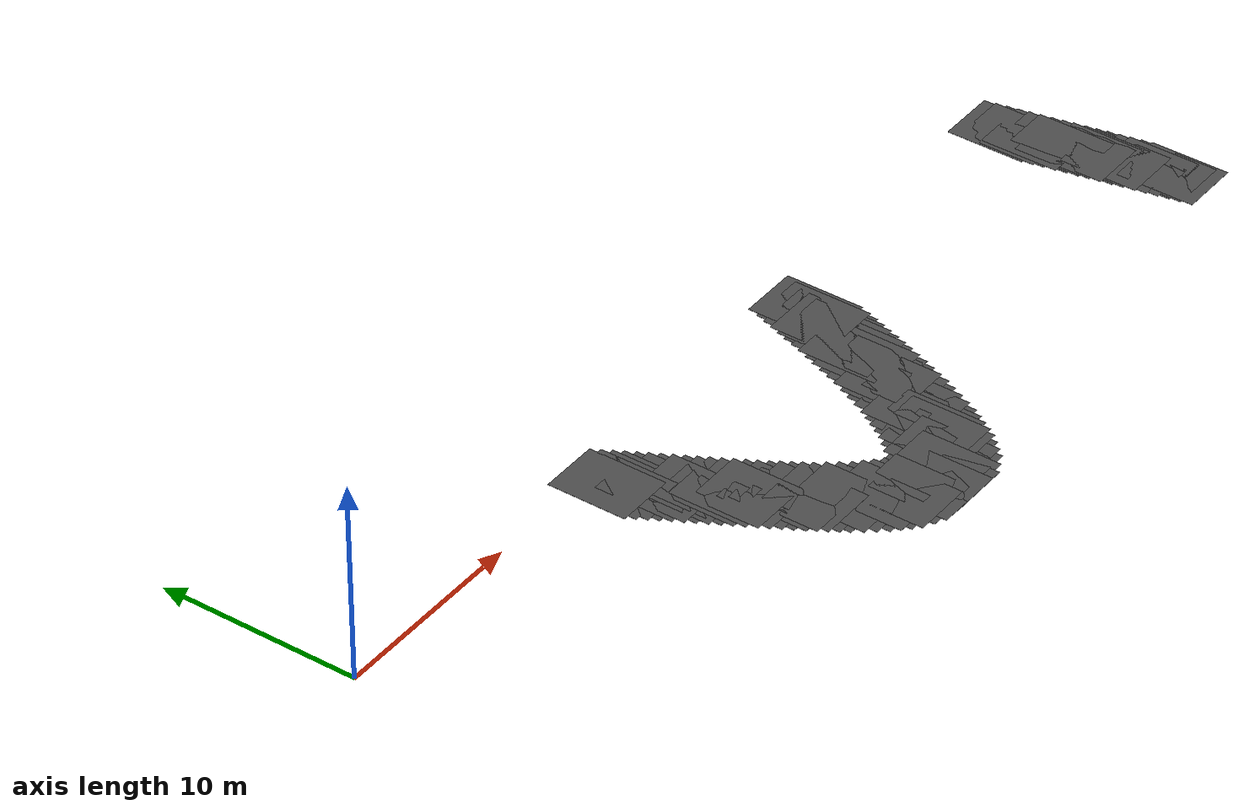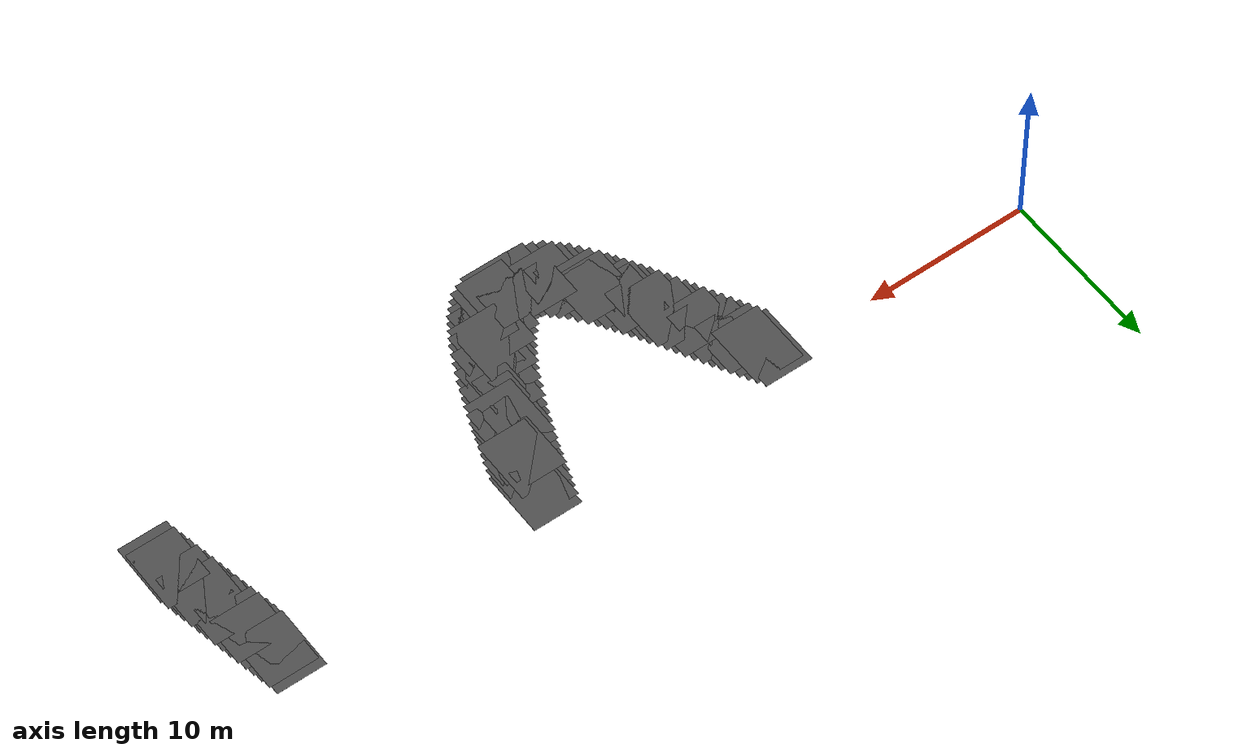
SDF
<sdf version="1.7">
 <world name="default">
  <model name="roadSegment_16_1">
   <static>1</static>
   <link name="link">
    <collision name="collision"><geometry><box><size>3 4 0.01</size></box></geometry></collision>
    <visual name="visual">
     <cast_shadows>0</cast_shadows>
     <geometry><box><size>3 4 0.01</size></box></geometry>
     <material>
      <script>
       <uri>model://asphalt_plane/materials/scripts</uri>
       <uri>model://asphalt_plane/materials/textures</uri>
       <name>vrc/asphalt</name>
      </script>
     </material>
    </visual>
   </link>
   <pose>16.25 -0.89327 0 0 -0 0</pose>
  </model>
  <model name="roadSegment_16_2">
   <static>1</static>
   <link name="link">
    <collision name="collision"><geometry><box><size>3 4 0.01</size></box></geometry></collision>
    <visual name="visual">
     <cast_shadows>0</cast_shadows>
     <geometry><box><size>3 4 0.01</size></box></geometry>
     <material>
      <script>
       <uri>model://asphalt_plane/materials/scripts</uri>
       <uri>model://asphalt_plane/materials/textures</uri>
       <name>vrc/asphalt</name>
      </script>
     </material>
    </visual>
   </link>
   <pose>16.5 -1.31955 0 0 -0 0</pose>
  </model>
  <model name="roadSegment_16_3">
   <static>1</static>
   <link name="link">
    <collision name="collision"><geometry><box><size>3 4 0.01</size></box></geometry></collision>
    <visual name="visual">
     <cast_shadows>0</cast_shadows>
     <geometry><box><size>3 4 0.01</size></box></geometry>
     <material>
      <script>
       <uri>model://asphalt_plane/materials/scripts</uri>
       <uri>model://asphalt_plane/materials/textures</uri>
       <name>vrc/asphalt</name>
      </script>
     </material>
    </visual>
   </link>
   <pose>16.75 -1.74582 0 0 -0 0</pose>
  </model>
  <model name="roadSegment_17_0">
   <static>1</static>
   <link name="link">
    <collision name="collision"><geometry><box><size>3 4 0.01</size></box></geometry></collision>
    <visual name="visual">
     <cast_shadows>0</cast_shadows>
     <geometry><box><size>3 4 0.01</size></box></geometry>
     <material>
      <script>
       <uri>model://asphalt_plane/materials/scripts</uri>
       <uri>model://asphalt_plane/materials/textures</uri>
       <name>vrc/asphalt</name>
      </script>
     </material>
    </visual>
   </link>
   <pose>17 -2.1721 0 0 -0 0</pose>
  </model>
  <model name="roadSegment_17_1">
   <static>1</static>
   <link name="link">
    <collision name="collision"><geometry><box><size>3 4 0.01</size></box></geometry></collision>
    <visual name="visual">
     <cast_shadows>0</cast_shadows>
     <geometry><box><size>3 4 0.01</size></box></geometry>
     <material>
      <script>
       <uri>model://asphalt_plane/materials/scripts</uri>
       <uri>model://asphalt_plane/materials/textures</uri>
       <name>vrc/asphalt</name>
      </script>
     </material>
    </visual>
   </link>
   <pose>17.25 -2.62475 0 0 -0 0</pose>
  </model>
  <model name="roadSegment_17_2">
   <static>1</static>
   <link name="link">
    <collision name="collision"><geometry><box><size>3 4 0.01</size></box></geometry></collision>
    <visual name="visual">
     <cast_shadows>0</cast_shadows>
     <geometry><box><size>3 4 0.01</size></box></geometry>
     <material>
      <script>
       <uri>model://asphalt_plane/materials/scripts</uri>
       <uri>model://asphalt_plane/materials/textures</uri>
       <name>vrc/asphalt</name>
      </script>
     </material>
    </visual>
   </link>
   <pose>17.5 -3.07739 0 0 -0 0</pose>
  </model>
  <model name="roadSegment_17_3">
   <static>1</static>
   <link name="link">
    <collision name="collision"><geometry><box><size>3 4 0.01</size></box></geometry></collision>
    <visual name="visual">
     <cast_shadows>0</cast_shadows>
     <geometry><box><size>3 4 0.01</size></box></geometry>
     <material>
      <script>
       <uri>model://asphalt_plane/materials/scripts</uri>
       <uri>model://asphalt_plane/materials/textures</uri>
       <name>vrc/asphalt</name>
      </script>
     </material>
    </visual>
   </link>
   <pose>17.75 -3.53004 0 0 -0 0</pose>
  </model>
  <model name="roadSegment_18_0">
   <static>1</static>
   <link name="link">
    <collision name="collision"><geometry><box><size>3 4 0.01</size></box></geometry></collision>
    <visual name="visual">
     <cast_shadows>0</cast_shadows>
     <geometry><box><size>3 4 0.01</size></box></geometry>
     <material>
      <script>
       <uri>model://asphalt_plane/materials/scripts</uri>
       <uri>model://asphalt_plane/materials/textures</uri>
       <name>vrc/asphalt</name>
      </script>
     </material>
    </visual>
   </link>
   <pose>18 -3.98268 0 0 -0 0</pose>
  </model>
  <model name="roadSegment_18_1">
   <static>1</static>
   <link name="link">
    <collision name="collision"><geometry><box><size>3 4 0.01</size></box></geometry></collision>
    <visual name="visual">
     <cast_shadows>0</cast_shadows>
     <geometry><box><size>3 4 0.01</size></box></geometry>
     <material>
      <script>
       <uri>model://asphalt_plane/materials/scripts</uri>
       <uri>model://asphalt_plane/materials/textures</uri>
       <name>vrc/asphalt</name>
      </script>
     </material>
    </visual>
   </link>
   <pose>18.25 -4.44018 0 0 -0 0</pose>
  </model>
  <model name="roadSegment_18_2">
   <static>1</static>
   <link name="link">
    <collision name="collision"><geometry><box><size>3 4 0.01</size></box></geometry></collision>
    <visual name="visual">
     <cast_shadows>0</cast_shadows>
     <geometry><box><size>3 4 0.01</size></box></geometry>
     <material>
      <script>
       <uri>model://asphalt_plane/materials/scripts</uri>
       <uri>model://asphalt_plane/materials/textures</uri>
       <name>vrc/asphalt</name>
      </script>
     </material>
    </visual>
   </link>
   <pose>18.5 -4.89767 0 0 -0 0</pose>
  </model>
  <model name="roadSegment_18_3">
   <static>1</static>
   <link name="link">
    <collision name="collision"><geometry><box><size>3 4 0.01</size></box></geometry></collision>
    <visual name="visual">
     <cast_shadows>0</cast_shadows>
     <geometry><box><size>3 4 0.01</size></box></geometry>
     <material>
      <script>
       <uri>model://asphalt_plane/materials/scripts</uri>
       <uri>model://asphalt_plane/materials/textures</uri>
       <name>vrc/asphalt</name>
      </script>
     </material>
    </visual>
   </link>
   <pose>18.75 -5.35516 0 0 -0 0</pose>
  </model>
  <model name="roadSegment_19_0">
   <static>1</static>
   <link name="link">
    <collision name="collision"><geometry><box><size>3 4 0.01</size></box></geometry></collision>
    <visual name="visual">
     <cast_shadows>0</cast_shadows>
     <geometry><box><size>3 4 0.01</size></box></geometry>
     <material>
      <script>
       <uri>model://asphalt_plane/materials/scripts</uri>
       <uri>model://asphalt_plane/materials/textures</uri>
       <name>vrc/asphalt</name>
      </script>
     </material>
    </visual>
   </link>
   <pose>19 -5.81265 0 0 -0 0</pose>
  </model>
  <model name="roadSegment_19_1">
   <static>1</static>
   <link name="link">
    <collision name="collision"><geometry><box><size>3 4 0.01</size></box></geometry></collision>
    <visual name="visual">
     <cast_shadows>0</cast_shadows>
     <geometry><box><size>3 4 0.01</size></box></geometry>
     <material>
      <script>
       <uri>model://asphalt_plane/materials/scripts</uri>
       <uri>model://asphalt_plane/materials/textures</uri>
       <name>vrc/asphalt</name>
      </script>
     </material>
    </visual>
   </link>
   <pose>19.25 -6.25149 0 0 -0 0</pose>
  </model>
  <model name="roadSegment_19_2">
   <static>1</static>
   <link name="link">
    <collision name="collision"><geometry><box><size>3 4 0.01</size></box></geometry></collision>
    <visual name="visual">
     <cast_shadows>0</cast_shadows>
     <geometry><box><size>3 4 0.01</size></box></geometry>
     <material>
      <script>
       <uri>model://asphalt_plane/materials/scripts</uri>
       <uri>model://asphalt_plane/materials/textures</uri>
       <name>vrc/asphalt</name>
      </script>
     </material>
    </visual>
   </link>
   <pose>19.5 -6.69034 0 0 -0 0</pose>
  </model>
  <model name="roadSegment_19_3">
   <static>1</static>
   <link name="link">
    <collision name="collision"><geometry><box><size>3 4 0.01</size></box></geometry></collision>
    <visual name="visual">
     <cast_shadows>0</cast_shadows>
     <geometry><box><size>3 4 0.01</size></box></geometry>
     <material>
      <script>
       <uri>model://asphalt_plane/materials/scripts</uri>
       <uri>model://asphalt_plane/materials/textures</uri>
       <name>vrc/asphalt</name>
      </script>
     </material>
    </visual>
   </link>
   <pose>19.75 -7.12918 0 0 -0 0</pose>
  </model>
  <model name="roadSegment_20_0">
   <static>1</static>
   <link name="link">
    <collision name="collision"><geometry><box><size>3 4 0.01</size></box></geometry></collision>
    <visual name="visual">
     <cast_shadows>0</cast_shadows>
     <geometry><box><size>3 4 0.01</size></box></geometry>
     <material>
      <script>
       <uri>model://asphalt_plane/materials/scripts</uri>
       <uri>model://asphalt_plane/materials/textures</uri>
       <name>vrc/asphalt</name>
      </script>
     </material>
    </visual>
   </link>
   <pose>20 -7.56802 0 0 -0 0</pose>
  </model>
  <model name="roadSegment_20_1">
   <static>1</static>
   <link name="link">
    <collision name="collision"><geometry><box><size>3 4 0.01</size></box></geometry></collision>
    <visual name="visual">
     <cast_shadows>0</cast_shadows>
     <geometry><box><size>3 4 0.01</size></box></geometry>
     <material>
      <script>
       <uri>model://asphalt_plane/materials/scripts</uri>
       <uri>model://asphalt_plane/materials/textures</uri>
       <name>vrc/asphalt</name>
      </script>
     </material>
    </visual>
   </link>
   <pose>20.25 -7.96391 0 0 -0 0</pose>
  </model>
  <model name="roadSegment_20_2">
   <static>1</static>
   <link name="link">
    <collision name="collision"><geometry><box><size>3 4 0.01</size></box></geometry></collision>
    <visual name="visual">
     <cast_shadows>0</cast_shadows>
     <geometry><box><size>3 4 0.01</size></box></geometry>
     <material>
      <script>
       <uri>model://asphalt_plane/materials/scripts</uri>
       <uri>model://asphalt_plane/materials/textures</uri>
       <name>vrc/asphalt</name>
      </script>
     </material>
    </visual>
   </link>
   <pose>20.5 -8.35979 0 0 -0 0</pose>
  </model>
  <model name="roadSegment_20_3">
   <static>1</static>
   <link name="link">
    <collision name="collision"><geometry><box><size>3 4 0.01</size></box></geometry></collision>
    <visual name="visual">
     <cast_shadows>0</cast_shadows>
     <geometry><box><size>3 4 0.01</size></box></geometry>
     <material>
      <script>
       <uri>model://asphalt_plane/materials/scripts</uri>
       <uri>model://asphalt_plane/materials/textures</uri>
       <name>vrc/asphalt</name>
      </script>
     </material>
    </visual>
   </link>
   <pose>20.75 -8.75567 0 0 -0 0</pose>
  </model>
  <model name="roadSegment_21_0">
   <static>1</static>
   <link name="link">
    <collision name="collision"><geometry><box><size>3 4 0.01</size></box></geometry></collision>
    <visual name="visual">
     <cast_shadows>0</cast_shadows>
     <geometry><box><size>3 4 0.01</size></box></geometry>
     <material>
      <script>
       <uri>model://asphalt_plane/materials/scripts</uri>
       <uri>model://asphalt_plane/materials/textures</uri>
       <name>vrc/asphalt</name>
      </script>
     </material>
    </visual>
   </link>
   <pose>21 -9.15155 0 0 -0 0</pose>
  </model>
  <model name="roadSegment_21_1">
   <static>1</static>
   <link name="link">
    <collision name="collision"><geometry><box><size>3 4 0.01</size></box></geometry></collision>
    <visual name="visual">
     <cast_shadows>0</cast_shadows>
     <geometry><box><size>3 4 0.01</size></box></geometry>
     <material>
      <script>
       <uri>model://asphalt_plane/materials/scripts</uri>
       <uri>model://asphalt_plane/materials/textures</uri>
       <name>vrc/asphalt</name>
      </script>
     </material>
    </visual>
   </link>
   <pose>21.3333 -9.59024 0 0 -0 0</pose>
  </model>
  <model name="roadSegment_21_2">
   <static>1</static>
   <link name="link">
    <collision name="collision"><geometry><box><size>3 4 0.01</size></box></geometry></collision>
    <visual name="visual">
     <cast_shadows>0</cast_shadows>
     <geometry><box><size>3 4 0.01</size></box></geometry>
     <material>
      <script>
       <uri>model://asphalt_plane/materials/scripts</uri>
       <uri>model://asphalt_plane/materials/textures</uri>
       <name>vrc/asphalt</name>
      </script>
     </material>
    </visual>
   </link>
   <pose>21.6667 -10.0289 0 0 -0 0</pose>
  </model>
  <model name="roadSegment_22_0">
   <static>1</static>
   <link name="link">
    <collision name="collision"><geometry><box><size>3 4 0.01</size></box></geometry></collision>
    <visual name="visual">
     <cast_shadows>0</cast_shadows>
     <geometry><box><size>3 4 0.01</size></box></geometry>
     <material>
      <script>
       <uri>model://asphalt_plane/materials/scripts</uri>
       <uri>model://asphalt_plane/materials/textures</uri>
       <name>vrc/asphalt</name>
      </script>
     </material>
    </visual>
   </link>
   <pose>22 -10.4676 0 0 -0 0</pose>
  </model>
  <model name="roadSegment_22_1">
   <static>1</static>
   <link name="link">
    <collision name="collision"><geometry><box><size>3 4 0.01</size></box></geometry></collision>
    <visual name="visual">
     <cast_shadows>0</cast_shadows>
     <geometry><box><size>3 4 0.01</size></box></geometry>
     <material>
      <script>
       <uri>model://asphalt_plane/materials/scripts</uri>
       <uri>model://asphalt_plane/materials/textures</uri>
       <name>vrc/asphalt</name>
      </script>
     </material>
    </visual>
   </link>
   <pose>22.3333 -10.7876 0 0 -0 0</pose>
  </model>
  <model name="roadSegment_22_2">
   <static>1</static>
   <link name="link">
    <collision name="collision"><geometry><box><size>3 4 0.01</size></box></geometry></collision>
    <visual name="visual">
     <cast_shadows>0</cast_shadows>
     <geometry><box><size>3 4 0.01</size></box></geometry>
     <material>
      <script>
       <uri>model://asphalt_plane/materials/scripts</uri>
       <uri>model://asphalt_plane/materials/textures</uri>
       <name>vrc/asphalt</name>
      </script>
     </material>
    </visual>
   </link>
   <pose>22.6667 -11.1075 0 0 -0 0</pose>
  </model>
  <model name="roadSegment_23_0">
   <static>1</static>
   <link name="link">
    <collision name="collision"><geometry><box><size>3 4 0.01</size></box></geometry></collision>
    <visual name="visual">
     <cast_shadows>0</cast_shadows>
     <geometry><box><size>3 4 0.01</size></box></geometry>
     <material>
      <script>
       <uri>model://asphalt_plane/materials/scripts</uri>
       <uri>model://asphalt_plane/materials/textures</uri>
       <name>vrc/asphalt</name>
      </script>
     </material>
    </visual>
   </link>
   <pose>23 -11.4274 0 0 -0 0</pose>
  </model>
  <model name="roadSegment_23_1">
   <static>1</static>
   <link name="link">
    <collision name="collision"><geometry><box><size>3 4 0.01</size></box></geometry></collision>
    <visual name="visual">
     <cast_shadows>0</cast_shadows>
     <geometry><box><size>3 4 0.01</size></box></geometry>
     <material>
      <script>
       <uri>model://asphalt_plane/materials/scripts</uri>
       <uri>model://asphalt_plane/materials/textures</uri>
       <name>vrc/asphalt</name>
      </script>
     </material>
    </visual>
   </link>
   <pose>23.5 -11.6907 0 0 -0 0</pose>
  </model>
  <model name="roadSegment_24_0">
   <static>1</static>
   <link name="link">
    <collision name="collision"><geometry><box><size>3 4 0.01</size></box></geometry></collision>
    <visual name="visual">
     <cast_shadows>0</cast_shadows>
     <geometry><box><size>3 4 0.01</size></box></geometry>
     <material>
      <script>
       <uri>model://asphalt_plane/materials/scripts</uri>
       <uri>model://asphalt_plane/materials/textures</uri>
       <name>vrc/asphalt</name>
      </script>
     </material>
    </visual>
   </link>
   <pose>24 -11.954 0 0 -0 0</pose>
  </model>
  <model name="roadSegment_24_1">
   <static>1</static>
   <link name="link">
    <collision name="collision"><geometry><box><size>3 4 0.01</size></box></geometry></collision>
    <visual name="visual">
     <cast_shadows>0</cast_shadows>
     <geometry><box><size>3 4 0.01</size></box></geometry>
     <material>
      <script>
       <uri>model://asphalt_plane/materials/scripts</uri>
       <uri>model://asphalt_plane/materials/textures</uri>
       <name>vrc/asphalt</name>
      </script>
     </material>
    </visual>
   </link>
   <pose>24.5 -11.9703 0 0 -0 0</pose>
  </model>
  <model name="roadSegment_25_0">
   <static>1</static>
   <link name="link">
    <collision name="collision"><geometry><box><size>3 4 0.01</size></box></geometry></collision>
    <visual name="visual">
     <cast_shadows>0</cast_shadows>
     <geometry><box><size>3 4 0.01</size></box></geometry>
     <material>
      <script>
       <uri>model://asphalt_plane/materials/scripts</uri>
       <uri>model://asphalt_plane/materials/textures</uri>
       <name>vrc/asphalt</name>
      </script>
     </material>
    </visual>
   </link>
   <pose>25 -11.9866 0 0 -0 0</pose>
  </model>
  <model name="roadSegment_25_1">
   <static>1</static>
   <link name="link">
    <collision name="collision"><geometry><box><size>3 4 0.01</size></box></geometry></collision>
    <visual name="visual">
     <cast_shadows>0</cast_shadows>
     <geometry><box><size>3 4 0.01</size></box></geometry>
     <material>
      <script>
       <uri>model://asphalt_plane/materials/scripts</uri>
       <uri>model://asphalt_plane/materials/textures</uri>
       <name>vrc/asphalt</name>
      </script>
     </material>
    </visual>
   </link>
   <pose>25.5 -11.7357 0 0 -0 0</pose>
  </model>
  <model name="roadSegment_26_0">
   <static>1</static>
   <link name="link">
    <collision name="collision"><geometry><box><size>3 4 0.01</size></box></geometry></collision>
    <visual name="visual">
     <cast_shadows>0</cast_shadows>
     <geometry><box><size>3 4 0.01</size></box></geometry>
     <material>
      <script>
       <uri>model://asphalt_plane/materials/scripts</uri>
       <uri>model://asphalt_plane/materials/textures</uri>
       <name>vrc/asphalt</name>
      </script>
     </material>
    </visual>
   </link>
   <pose>26 -11.4849 0 0 -0 0</pose>
  </model>
  <model name="roadSegment_26_1">
   <static>1</static>
   <link name="link">
    <collision name="collision"><geometry><box><size>3 4 0.01</size></box></geometry></collision>
    <visual name="visual">
     <cast_shadows>0</cast_shadows>
     <geometry><box><size>3 4 0.01</size></box></geometry>
     <material>
      <script>
       <uri>model://asphalt_plane/materials/scripts</uri>
       <uri>model://asphalt_plane/materials/textures</uri>
       <name>vrc/asphalt</name>
      </script>
     </material>
    </visual>
   </link>
   <pose>26.3333 -11.134 0 0 -0 0</pose>
  </model>
  <model name="roadSegment_26_2">
   <static>1</static>
   <link name="link">
    <collision name="collision"><geometry><box><size>3 4 0.01</size></box></geometry></collision>
    <visual name="visual">
     <cast_shadows>0</cast_shadows>
     <geometry><box><size>3 4 0.01</size></box></geometry>
     <material>
      <script>
       <uri>model://asphalt_plane/materials/scripts</uri>
       <uri>model://asphalt_plane/materials/textures</uri>
       <name>vrc/asphalt</name>
      </script>
     </material>
    </visual>
   </link>
   <pose>26.6667 -10.7832 0 0 -0 0</pose>
  </model>
  <model name="roadSegment_27_0">
   <static>1</static>
   <link name="link">
    <collision name="collision"><geometry><box><size>3 4 0.01</size></box></geometry></collision>
    <visual name="visual">
     <cast_shadows>0</cast_shadows>
     <geometry><box><size>3 4 0.01</size></box></geometry>
     <material>
      <script>
       <uri>model://asphalt_plane/materials/scripts</uri>
       <uri>model://asphalt_plane/materials/textures</uri>
       <name>vrc/asphalt</name>
      </script>
     </material>
    </visual>
   </link>
   <pose>27 -10.4323 0 0 -0 0</pose>
  </model>
  <model name="roadSegment_27_1">
   <static>1</static>
   <link name="link">
    <collision name="collision"><geometry><box><size>3 4 0.01</size></box></geometry></collision>
    <visual name="visual">
     <cast_shadows>0</cast_shadows>
     <geometry><box><size>3 4 0.01</size></box></geometry>
     <material>
      <script>
       <uri>model://asphalt_plane/materials/scripts</uri>
       <uri>model://asphalt_plane/materials/textures</uri>
       <name>vrc/asphalt</name>
      </script>
     </material>
    </visual>
   </link>
   <pose>27.25 -10.0337 0 0 -0 0</pose>
  </model>
  <model name="roadSegment_27_2">
   <static>1</static>
   <link name="link">
    <collision name="collision"><geometry><box><size>3 4 0.01</size></box></geometry></collision>
    <visual name="visual">
     <cast_shadows>0</cast_shadows>
     <geometry><box><size>3 4 0.01</size></box></geometry>
     <material>
      <script>
       <uri>model://asphalt_plane/materials/scripts</uri>
       <uri>model://asphalt_plane/materials/textures</uri>
       <name>vrc/asphalt</name>
      </script>
     </material>
    </visual>
   </link>
   <pose>27.5 -9.63503 0 0 -0 0</pose>
  </model>
  <model name="roadSegment_27_3">
   <static>1</static>
   <link name="link">
    <collision name="collision"><geometry><box><size>3 4 0.01</size></box></geometry></collision>
    <visual name="visual">
     <cast_shadows>0</cast_shadows>
     <geometry><box><size>3 4 0.01</size></box></geometry>
     <material>
      <script>
       <uri>model://asphalt_plane/materials/scripts</uri>
       <uri>model://asphalt_plane/materials/textures</uri>
       <name>vrc/asphalt</name>
      </script>
     </material>
    </visual>
   </link>
   <pose>27.75 -9.23638 0 0 -0 0</pose>
  </model>
  <model name="roadSegment_28_0">
   <static>1</static>
   <link name="link">
    <collision name="collision"><geometry><box><size>3 4 0.01</size></box></geometry></collision>
    <visual name="visual">
     <cast_shadows>0</cast_shadows>
     <geometry><box><size>3 4 0.01</size></box></geometry>
     <material>
      <script>
       <uri>model://asphalt_plane/materials/scripts</uri>
       <uri>model://asphalt_plane/materials/textures</uri>
       <name>vrc/asphalt</name>
      </script>
     </material>
    </visual>
   </link>
   <pose>28 -8.83773 0 0 -0 0</pose>
  </model>
  <model name="roadSegment_28_1">
   <static>1</static>
   <link name="link">
    <collision name="collision"><geometry><box><size>3 4 0.01</size></box></geometry></collision>
    <visual name="visual">
     <cast_shadows>0</cast_shadows>
     <geometry><box><size>3 4 0.01</size></box></geometry>
     <material>
      <script>
       <uri>model://asphalt_plane/materials/scripts</uri>
       <uri>model://asphalt_plane/materials/textures</uri>
       <name>vrc/asphalt</name>
      </script>
     </material>
    </visual>
   </link>
   <pose>28.25 -8.31248 0 0 -0 0</pose>
  </model>
  <model name="roadSegment_28_2">
   <static>1</static>
   <link name="link">
    <collision name="collision"><geometry><box><size>3 4 0.01</size></box></geometry></collision>
    <visual name="visual">
     <cast_shadows>0</cast_shadows>
     <geometry><box><size>3 4 0.01</size></box></geometry>
     <material>
      <script>
       <uri>model://asphalt_plane/materials/scripts</uri>
       <uri>model://asphalt_plane/materials/textures</uri>
       <name>vrc/asphalt</name>
      </script>
     </material>
    </visual>
   </link>
   <pose>28.5 -7.78723 0 0 -0 0</pose>
  </model>
  <model name="roadSegment_28_3">
   <static>1</static>
   <link name="link">
    <collision name="collision"><geometry><box><size>3 4 0.01</size></box></geometry></collision>
    <visual name="visual">
     <cast_shadows>0</cast_shadows>
     <geometry><box><size>3 4 0.01</size></box></geometry>
     <material>
      <script>
       <uri>model://asphalt_plane/materials/scripts</uri>
       <uri>model://asphalt_plane/materials/textures</uri>
       <name>vrc/asphalt</name>
      </script>
     </material>
    </visual>
   </link>
   <pose>28.75 -7.26198 0 0 -0 0</pose>
  </model>
  <model name="roadSegment_29_0">
   <static>1</static>
   <link name="link">
    <collision name="collision"><geometry><box><size>3 4 0.01</size></box></geometry></collision>
    <visual name="visual">
     <cast_shadows>0</cast_shadows>
     <geometry><box><size>3 4 0.01</size></box></geometry>
     <material>
      <script>
       <uri>model://asphalt_plane/materials/scripts</uri>
       <uri>model://asphalt_plane/materials/textures</uri>
       <name>vrc/asphalt</name>
      </script>
     </material>
    </visual>
   </link>
   <pose>29 -6.73673 0 0 -0 0</pose>
  </model>
  <model name="roadSegment_29_1">
   <static>1</static>
   <link name="link">
    <collision name="collision"><geometry><box><size>3 4 0.01</size></box></geometry></collision>
    <visual name="visual">
     <cast_shadows>0</cast_shadows>
     <geometry><box><size>3 4 0.01</size></box></geometry>
     <material>
      <script>
       <uri>model://asphalt_plane/materials/scripts</uri>
       <uri>model://asphalt_plane/materials/textures</uri>
       <name>vrc/asphalt</name>
      </script>
     </material>
    </visual>
   </link>
   <pose>29.2 -6.22763 0 0 -0 0</pose>
  </model>
  <model name="roadSegment_29_2">
   <static>1</static>
   <link name="link">
    <collision name="collision"><geometry><box><size>3 4 0.01</size></box></geometry></collision>
    <visual name="visual">
     <cast_shadows>0</cast_shadows>
     <geometry><box><size>3 4 0.01</size></box></geometry>
     <material>
      <script>
       <uri>model://asphalt_plane/materials/scripts</uri>
       <uri>model://asphalt_plane/materials/textures</uri>
       <name>vrc/asphalt</name>
      </script>
     </material>
    </visual>
   </link>
   <pose>29.4 -5.71853 0 0 -0 0</pose>
  </model>
  <model name="roadSegment_29_3">
   <static>1</static>
   <link name="link">
    <collision name="collision"><geometry><box><size>3 4 0.01</size></box></geometry></collision>
    <visual name="visual">
     <cast_shadows>0</cast_shadows>
     <geometry><box><size>3 4 0.01</size></box></geometry>
     <material>
      <script>
       <uri>model://asphalt_plane/materials/scripts</uri>
       <uri>model://asphalt_plane/materials/textures</uri>
       <name>vrc/asphalt</name>
      </script>
     </material>
    </visual>
   </link>
   <pose>29.6 -5.20943 0 0 -0 0</pose>
  </model>
  <model name="roadSegment_29_4">
   <static>1</static>
   <link name="link">
    <collision name="collision"><geometry><box><size>3 4 0.01</size></box></geometry></collision>
    <visual name="visual">
     <cast_shadows>0</cast_shadows>
     <geometry><box><size>3 4 0.01</size></box></geometry>
     <material>
      <script>
       <uri>model://asphalt_plane/materials/scripts</uri>
       <uri>model://asphalt_plane/materials/textures</uri>
       <name>vrc/asphalt</name>
      </script>
     </material>
    </visual>
   </link>
   <pose>29.8 -4.70033 0 0 -0 0</pose>
  </model>
  <model name="roadSegment_30_0">
   <static>1</static>
   <link name="link">
    <collision name="collision"><geometry><box><size>3 4 0.01</size></box></geometry></collision>
    <visual name="visual">
     <cast_shadows>0</cast_shadows>
     <geometry><box><size>3 4 0.01</size></box></geometry>
     <material>
      <script>
       <uri>model://asphalt_plane/materials/scripts</uri>
       <uri>model://asphalt_plane/materials/textures</uri>
       <name>vrc/asphalt</name>
      </script>
     </material>
    </visual>
   </link>
   <pose>30 -4.19123 0 0 -0 0</pose>
  </model>
  <model name="roadSegment_30_1">
   <static>1</static>
   <link name="link">
    <collision name="collision"><geometry><box><size>3 4 0.01</size></box></geometry></collision>
    <visual name="visual">
     <cast_shadows>0</cast_shadows>
     <geometry><box><size>3 4 0.01</size></box></geometry>
     <material>
      <script>
       <uri>model://asphalt_plane/materials/scripts</uri>
       <uri>model://asphalt_plane/materials/textures</uri>
       <name>vrc/asphalt</name>
      </script>
     </material>
    </visual>
   </link>
   <pose>30.1667 -3.70734 0 0 -0 0</pose>
  </model>
  <model name="roadSegment_30_2">
   <static>1</static>
   <link name="link">
    <collision name="collision"><geometry><box><size>3 4 0.01</size></box></geometry></collision>
    <visual name="visual">
     <cast_shadows>0</cast_shadows>
     <geometry><box><size>3 4 0.01</size></box></geometry>
     <material>
      <script>
       <uri>model://asphalt_plane/materials/scripts</uri>
       <uri>model://asphalt_plane/materials/textures</uri>
       <name>vrc/asphalt</name>
      </script>
     </material>
    </visual>
   </link>
   <pose>30.3333 -3.22345 0 0 -0 0</pose>
  </model>
  <model name="roadSegment_30_3">
   <static>1</static>
   <link name="link">
    <collision name="collision"><geometry><box><size>3 4 0.01</size></box></geometry></collision>
    <visual name="visual">
     <cast_shadows>0</cast_shadows>
     <geometry><box><size>3 4 0.01</size></box></geometry>
     <material>
      <script>
       <uri>model://asphalt_plane/materials/scripts</uri>
       <uri>model://asphalt_plane/materials/textures</uri>
       <name>vrc/asphalt</name>
      </script>
     </material>
    </visual>
   </link>
   <pose>30.5 -2.73956 0 0 -0 0</pose>
  </model>
  <model name="roadSegment_30_4">
   <static>1</static>
   <link name="link">
    <collision name="collision"><geometry><box><size>3 4 0.01</size></box></geometry></collision>
    <visual name="visual">
     <cast_shadows>0</cast_shadows>
     <geometry><box><size>3 4 0.01</size></box></geometry>
     <material>
      <script>
       <uri>model://asphalt_plane/materials/scripts</uri>
       <uri>model://asphalt_plane/materials/textures</uri>
       <name>vrc/asphalt</name>
      </script>
     </material>
    </visual>
   </link>
   <pose>30.6667 -2.25567 0 0 -0 0</pose>
  </model>
  <model name="roadSegment_30_5">
   <static>1</static>
   <link name="link">
    <collision name="collision"><geometry><box><size>3 4 0.01</size></box></geometry></collision>
    <visual name="visual">
     <cast_shadows>0</cast_shadows>
     <geometry><box><size>3 4 0.01</size></box></geometry>
     <material>
      <script>
       <uri>model://asphalt_plane/materials/scripts</uri>
       <uri>model://asphalt_plane/materials/textures</uri>
       <name>vrc/asphalt</name>
      </script>
     </material>
    </visual>
   </link>
   <pose>30.8333 -1.77178 0 0 -0 0</pose>
  </model>
  <model name="roadSegment_31_0">
   <static>1</static>
   <link name="link">
    <collision name="collision"><geometry><box><size>3 4 0.01</size></box></geometry></collision>
    <visual name="visual">
     <cast_shadows>0</cast_shadows>
     <geometry><box><size>3 4 0.01</size></box></geometry>
     <material>
      <script>
       <uri>model://asphalt_plane/materials/scripts</uri>
       <uri>model://asphalt_plane/materials/textures</uri>
       <name>vrc/asphalt</name>
      </script>
     </material>
    </visual>
   </link>
   <pose>31 -1.28789 0 0 -0 0</pose>
  </model>
  <model name="roadSegment_31_1">
   <static>1</static>
   <link name="link">
    <collision name="collision"><geometry><box><size>3 4 0.01</size></box></geometry></collision>
    <visual name="visual">
     <cast_shadows>0</cast_shadows>
     <geometry><box><size>3 4 0.01</size></box></geometry>
     <material>
      <script>
       <uri>model://asphalt_plane/materials/scripts</uri>
       <uri>model://asphalt_plane/materials/textures</uri>
       <name>vrc/asphalt</name>
      </script>
     </material>
    </visual>
   </link>
   <pose>31.1667 -0.76244 0 0 -0 0</pose>
  </model>
  <model name="roadSegment_47_2">
   <static>1</static>
   <link name="link">
    <collision name="collision"><geometry><box><size>3 4 0.01</size></box></geometry></collision>
    <visual name="visual">
     <cast_shadows>0</cast_shadows>
     <geometry><box><size>3 4 0.01</size></box></geometry>
     <material>
      <script>
       <uri>model://asphalt_plane/materials/scripts</uri>
       <uri>model://asphalt_plane/materials/textures</uri>
       <name>vrc/asphalt</name>
      </script>
     </material>
    </visual>
   </link>
   <pose>47.2222 -0.476903 0 0 -0 0</pose>
  </model>
  <model name="roadSegment_47_3">
   <static>1</static>
   <link name="link">
    <collision name="collision"><geometry><box><size>3 4 0.01</size></box></geometry></collision>
    <visual name="visual">
     <cast_shadows>0</cast_shadows>
     <geometry><box><size>3 4 0.01</size></box></geometry>
     <material>
      <script>
       <uri>model://asphalt_plane/materials/scripts</uri>
       <uri>model://asphalt_plane/materials/textures</uri>
       <name>vrc/asphalt</name>
      </script>
     </material>
    </visual>
   </link>
   <pose>47.3333 -1.00647 0 0 -0 0</pose>
  </model>
  <model name="roadSegment_47_4">
   <static>1</static>
   <link name="link">
    <collision name="collision"><geometry><box><size>3 4 0.01</size></box></geometry></collision>
    <visual name="visual">
     <cast_shadows>0</cast_shadows>
     <geometry><box><size>3 4 0.01</size></box></geometry>
     <material>
      <script>
       <uri>model://asphalt_plane/materials/scripts</uri>
       <uri>model://asphalt_plane/materials/textures</uri>
       <name>vrc/asphalt</name>
      </script>
     </material>
    </visual>
   </link>
   <pose>47.4444 -1.53603 0 0 -0 0</pose>
  </model>
  <model name="roadSegment_47_5">
   <static>1</static>
   <link name="link">
    <collision name="collision"><geometry><box><size>3 4 0.01</size></box></geometry></collision>
    <visual name="visual">
     <cast_shadows>0</cast_shadows>
     <geometry><box><size>3 4 0.01</size></box></geometry>
     <material>
      <script>
       <uri>model://asphalt_plane/materials/scripts</uri>
       <uri>model://asphalt_plane/materials/textures</uri>
       <name>vrc/asphalt</name>
      </script>
     </material>
    </visual>
   </link>
   <pose>47.5556 -2.06559 0 0 -0 0</pose>
  </model>
  <model name="roadSegment_47_6">
   <static>1</static>
   <link name="link">
    <collision name="collision"><geometry><box><size>3 4 0.01</size></box></geometry></collision>
    <visual name="visual">
     <cast_shadows>0</cast_shadows>
     <geometry><box><size>3 4 0.01</size></box></geometry>
     <material>
      <script>
       <uri>model://asphalt_plane/materials/scripts</uri>
       <uri>model://asphalt_plane/materials/textures</uri>
       <name>vrc/asphalt</name>
      </script>
     </material>
    </visual>
   </link>
   <pose>47.6667 -2.59515 0 0 -0 0</pose>
  </model>
  <model name="roadSegment_47_7">
   <static>1</static>
   <link name="link">
    <collision name="collision"><geometry><box><size>3 4 0.01</size></box></geometry></collision>
    <visual name="visual">
     <cast_shadows>0</cast_shadows>
     <geometry><box><size>3 4 0.01</size></box></geometry>
     <material>
      <script>
       <uri>model://asphalt_plane/materials/scripts</uri>
       <uri>model://asphalt_plane/materials/textures</uri>
       <name>vrc/asphalt</name>
      </script>
     </material>
    </visual>
   </link>
   <pose>47.7778 -3.12472 0 0 -0 0</pose>
  </model>
  <model name="roadSegment_47_8">
   <static>1</static>
   <link name="link">
    <collision name="collision"><geometry><box><size>3 4 0.01</size></box></geometry></collision>
    <visual name="visual">
     <cast_shadows>0</cast_shadows>
     <geometry><box><size>3 4 0.01</size></box></geometry>
     <material>
      <script>
       <uri>model://asphalt_plane/materials/scripts</uri>
       <uri>model://asphalt_plane/materials/textures</uri>
       <name>vrc/asphalt</name>
      </script>
     </material>
    </visual>
   </link>
   <pose>47.8889 -3.65428 0 0 -0 0</pose>
  </model>
  <model name="roadSegment_48_0">
   <static>1</static>
   <link name="link">
    <collision name="collision"><geometry><box><size>3 4 0.01</size></box></geometry></collision>
    <visual name="visual">
     <cast_shadows>0</cast_shadows>
     <geometry><box><size>3 4 0.01</size></box></geometry>
     <material>
      <script>
       <uri>model://asphalt_plane/materials/scripts</uri>
       <uri>model://asphalt_plane/materials/textures</uri>
       <name>vrc/asphalt</name>
      </script>
     </material>
    </visual>
   </link>
   <pose>48 -4.18384 0 0 -0 0</pose>
  </model>
  <model name="roadSegment_48_1">
   <static>1</static>
   <link name="link">
    <collision name="collision"><geometry><box><size>3 4 0.01</size></box></geometry></collision>
    <visual name="visual">
     <cast_shadows>0</cast_shadows>
     <geometry><box><size>3 4 0.01</size></box></geometry>
     <material>
      <script>
       <uri>model://asphalt_plane/materials/scripts</uri>
       <uri>model://asphalt_plane/materials/textures</uri>
       <name>vrc/asphalt</name>
      </script>
     </material>
    </visual>
   </link>
   <pose>48.1111 -4.71661 0 0 -0 0</pose>
  </model>
  <model name="roadSegment_48_2">
   <static>1</static>
   <link name="link">
    <collision name="collision"><geometry><box><size>3 4 0.01</size></box></geometry></collision>
    <visual name="visual">
     <cast_shadows>0</cast_shadows>
     <geometry><box><size>3 4 0.01</size></box></geometry>
     <material>
      <script>
       <uri>model://asphalt_plane/materials/scripts</uri>
       <uri>model://asphalt_plane/materials/textures</uri>
       <name>vrc/asphalt</name>
      </script>
     </material>
    </visual>
   </link>
   <pose>48.2222 -5.24938 0 0 -0 0</pose>
  </model>
  <model name="roadSegment_48_3">
   <static>1</static>
   <link name="link">
    <collision name="collision"><geometry><box><size>3 4 0.01</size></box></geometry></collision>
    <visual name="visual">
     <cast_shadows>0</cast_shadows>
     <geometry><box><size>3 4 0.01</size></box></geometry>
     <material>
      <script>
       <uri>model://asphalt_plane/materials/scripts</uri>
       <uri>model://asphalt_plane/materials/textures</uri>
       <name>vrc/asphalt</name>
      </script>
     </material>
    </visual>
   </link>
   <pose>48.3333 -5.78214 0 0 -0 0</pose>
  </model>
  <model name="roadSegment_48_4">
   <static>1</static>
   <link name="link">
    <collision name="collision"><geometry><box><size>3 4 0.01</size></box></geometry></collision>
    <visual name="visual">
     <cast_shadows>0</cast_shadows>
     <geometry><box><size>3 4 0.01</size></box></geometry>
     <material>
      <script>
       <uri>model://asphalt_plane/materials/scripts</uri>
       <uri>model://asphalt_plane/materials/textures</uri>
       <name>vrc/asphalt</name>
      </script>
     </material>
    </visual>
   </link>
   <pose>48.4444 -6.31491 0 0 -0 0</pose>
  </model>
  <model name="roadSegment_48_5">
   <static>1</static>
   <link name="link">
    <collision name="collision"><geometry><box><size>3 4 0.01</size></box></geometry></collision>
    <visual name="visual">
     <cast_shadows>0</cast_shadows>
     <geometry><box><size>3 4 0.01</size></box></geometry>
     <material>
      <script>
       <uri>model://asphalt_plane/materials/scripts</uri>
       <uri>model://asphalt_plane/materials/textures</uri>
       <name>vrc/asphalt</name>
      </script>
     </material>
    </visual>
   </link>
   <pose>48.5556 -6.84767 0 0 -0 0</pose>
  </model>
  <model name="roadSegment_48_6">
   <static>1</static>
   <link name="link">
    <collision name="collision"><geometry><box><size>3 4 0.01</size></box></geometry></collision>
    <visual name="visual">
     <cast_shadows>0</cast_shadows>
     <geometry><box><size>3 4 0.01</size></box></geometry>
     <material>
      <script>
       <uri>model://asphalt_plane/materials/scripts</uri>
       <uri>model://asphalt_plane/materials/textures</uri>
       <name>vrc/asphalt</name>
      </script>
     </material>
    </visual>
   </link>
   <pose>48.6667 -7.38044 0 0 -0 0</pose>
  </model>
  <model name="roadSegment_48_7">
   <static>1</static>
   <link name="link">
    <collision name="collision"><geometry><box><size>3 4 0.01</size></box></geometry></collision>
    <visual name="visual">
     <cast_shadows>0</cast_shadows>
     <geometry><box><size>3 4 0.01</size></box></geometry>
     <material>
      <script>
       <uri>model://asphalt_plane/materials/scripts</uri>
       <uri>model://asphalt_plane/materials/textures</uri>
       <name>vrc/asphalt</name>
      </script>
     </material>
    </visual>
   </link>
   <pose>48.7778 -7.91321 0 0 -0 0</pose>
  </model>
  <model name="roadSegment_48_8">
   <static>1</static>
   <link name="link">
    <collision name="collision"><geometry><box><size>3 4 0.01</size></box></geometry></collision>
    <visual name="visual">
     <cast_shadows>0</cast_shadows>
     <geometry><box><size>3 4 0.01</size></box></geometry>
     <material>
      <script>
       <uri>model://asphalt_plane/materials/scripts</uri>
       <uri>model://asphalt_plane/materials/textures</uri>
       <name>vrc/asphalt</name>
      </script>
     </material>
    </visual>
   </link>
   <pose>48.8889 -8.44597 0 0 -0 0</pose>
  </model>
 </world>
</sdf>
